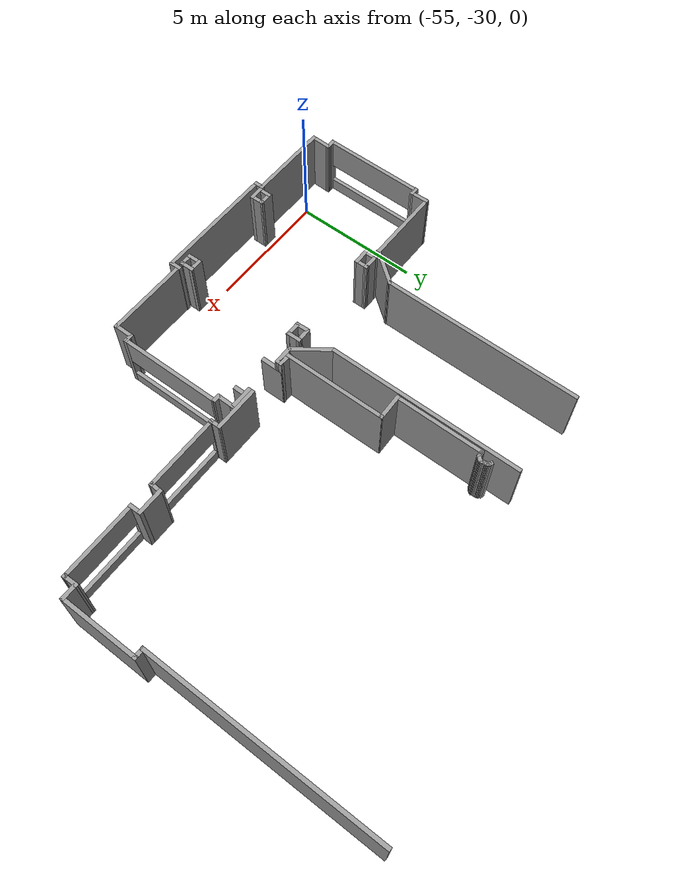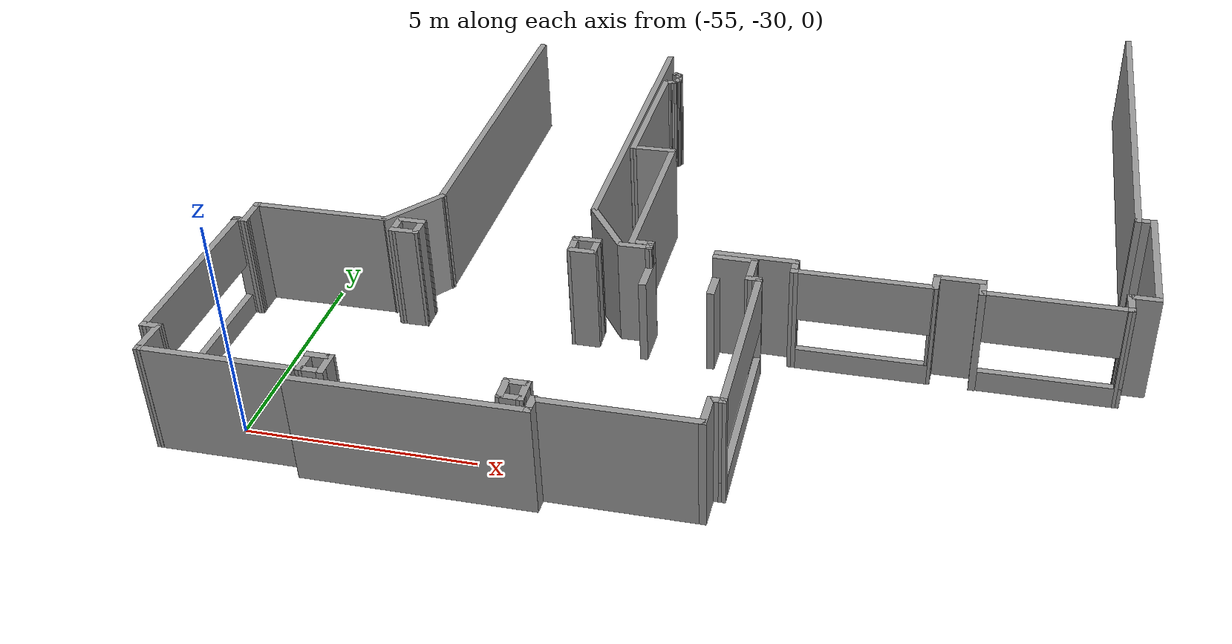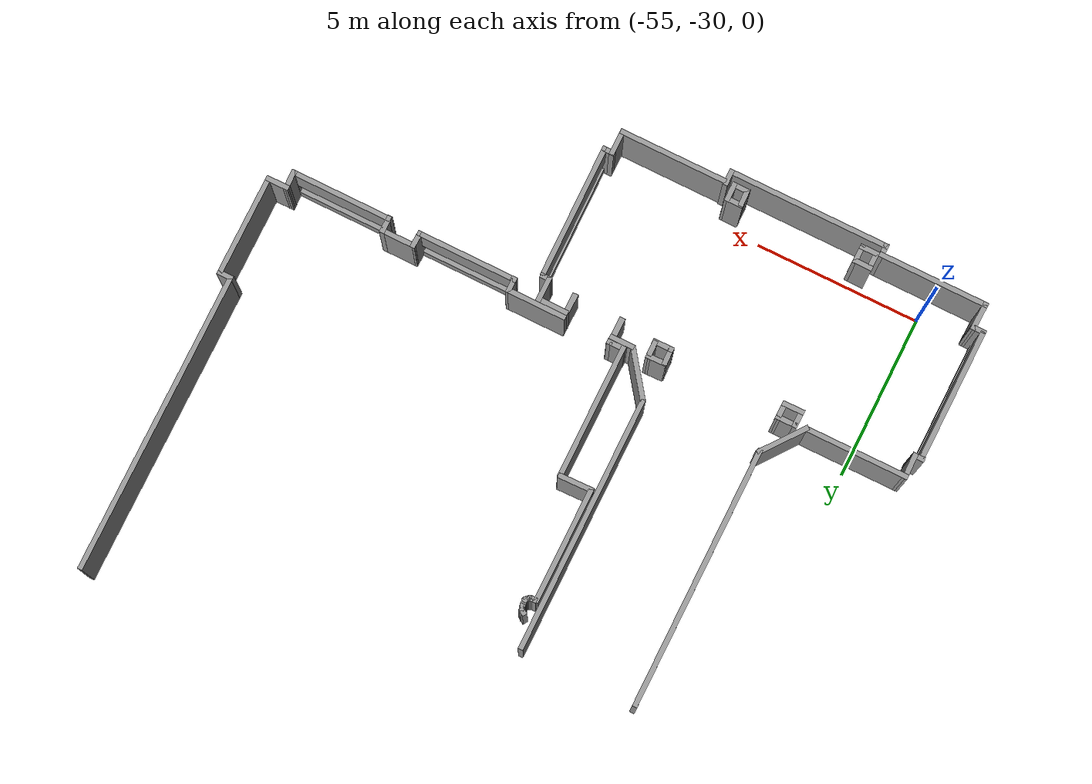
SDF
<sdf version="1.7">
 <model name="TD_n1_largo">
  <pose>-6.3187 -9.13173 0 0 -0 0</pose>
  <link name="Door_2">
   <collision name="Door_2_Collision">
    <geometry><box><size>0.9 0.17 2</size></box></geometry>
    <pose>0 0 1 0 -0 0</pose>
   </collision>
   <visual name="Door_2_Visual">
    <pose>0 0 1 0 -0 0</pose>
    <geometry><box><size>0.9 0.17 2</size></box></geometry>
    <material>
     <script><uri>file://media/materials/scripts/gazebo.material</uri><name>Gazebo/Grey</name></script>
    </material>
   </visual>
   <pose>-41.2094 -16.4238 0 0 -0 1.5717</pose>
  </link>
  <link name="Door_3">
   <collision name="Door_3_Collision">
    <geometry><box><size>0.9 0.17 2</size></box></geometry>
    <pose>0 0 1 0 -0 0</pose>
   </collision>
   <visual name="Door_3_Visual">
    <pose>0 0 1 0 -0 0</pose>
    <geometry><box><size>0.9 0.17 2</size></box></geometry>
    <material>
     <script><uri>file://media/materials/scripts/gazebo.material</uri><name>Gazebo/Grey</name></script>
    </material>
   </visual>
   <pose>-39.7197 -16.4588 0 0 -0 -1.57475</pose>
  </link>
  <link name="Wall_0">
   <pose>-36.5577 -16.4225 0 0 -0 0</pose>
   <visual name="Wall_0_Visual_0">
    <pose>-1.46263 0 1.25 0 -0 0</pose>
    <geometry><box><size>0.175242 0.15 2.5</size></box></geometry>
    <material>
     <script><uri>file://media/materials/scripts/gazebo.material</uri><name>Gazebo/Grey</name></script>
     <ambient>1 1 1 1</ambient>
    </material>
    <meta><layer>0</layer></meta>
   </visual>
   <collision name="Wall_0_Collision_0">
    <geometry><box><size>0.175242 0.15 2.5</size></box></geometry>
    <pose>-1.46263 0 1.25 0 -0 0</pose>
   </collision>
   <visual name="Wall_0_Visual_1">
    <pose>0.087621 0 0.25 0 -0 0</pose>
    <geometry><box><size>2.92525 0.15 0.5</size></box></geometry>
    <material>
     <script><uri>file://media/materials/scripts/gazebo.material</uri><name>Gazebo/Grey</name></script>
     <ambient>1 1 1 1</ambient>
    </material>
    <meta><layer>0</layer></meta>
   </visual>
   <collision name="Wall_0_Collision_1">
    <geometry><box><size>2.92525 0.15 0.5</size></box></geometry>
    <pose>0.087621 0 0.25 0 -0 0</pose>
   </collision>
   <visual name="Wall_0_Visual_2">
    <pose>1.50036 0 1.5 0 -0 0</pose>
    <geometry><box><size>0.099788 0.15 2</size></box></geometry>
    <material>
     <script><uri>file://media/materials/scripts/gazebo.material</uri><name>Gazebo/Grey</name></script>
     <ambient>1 1 1 1</ambient>
    </material>
    <meta><layer>0</layer></meta>
   </visual>
   <collision name="Wall_0_Collision_2">
    <geometry><box><size>0.099788 0.15 2</size></box></geometry>
    <pose>1.50036 0 1.5 0 -0 0</pose>
   </collision>
   <visual name="Wall_0_Visual_3">
    <pose>0.037727 0 1.9 0 -0 0</pose>
    <geometry><box><size>2.82547 0.15 1.2</size></box></geometry>
    <material>
     <script><uri>file://media/materials/scripts/gazebo.material</uri><name>Gazebo/Grey</name></script>
     <ambient>1 1 1 1</ambient>
    </material>
    <meta><layer>0</layer></meta>
   </visual>
   <collision name="Wall_0_Collision_3">
    <geometry><box><size>2.82547 0.15 1.2</size></box></geometry>
    <pose>0.037727 0 1.9 0 -0 0</pose>
   </collision>
  </link>
  <link name="Wall_1">
   <collision name="Wall_1_Collision">
    <geometry><box><size>0.530523 0.15 2.5</size></box></geometry>
    <pose>0 0 1.25 0 -0 0</pose>
   </collision>
   <visual name="Wall_1_Visual">
    <pose>0 0 1.25 0 -0 0</pose>
    <geometry><box><size>0.530523 0.15 2.5</size></box></geometry>
    <material>
     <script><uri>file://media/materials/scripts/gazebo.material</uri><name>Gazebo/Grey</name></script>
     <ambient>1 1 1 1</ambient>
    </material>
    <meta><layer>0</layer></meta>
   </visual>
   <pose>-35.0748 -16.2324 0 0 -0 1.53082</pose>
  </link>
  <link name="Wall_104">
   <collision name="Wall_104_Collision">
    <geometry><box><size>0.304633 0.15 2.5</size></box></geometry>
    <pose>0 0 1.25 0 -0 0</pose>
   </collision>
   <visual name="Wall_104_Visual">
    <pose>0 0 1.25 0 -0 0</pose>
    <geometry><box><size>0.304633 0.15 2.5</size></box></geometry>
    <material>
     <script><uri>file://media/materials/scripts/gazebo.material</uri><name>Gazebo/Grey</name></script>
     <ambient>1 1 1 1</ambient>
    </material>
    <meta><layer>0</layer></meta>
   </visual>
   <pose>-41.2141 -16.0856 0 0 -0 1.58598</pose>
  </link>
  <link name="Wall_106">
   <collision name="Wall_106_Collision">
    <geometry><box><size>1.59403 0.15 2.5</size></box></geometry>
    <pose>0 0 1.25 0 -0 0</pose>
   </collision>
   <visual name="Wall_106_Visual">
    <pose>0 0 1.25 0 -0 0</pose>
    <geometry><box><size>1.59403 0.15 2.5</size></box></geometry>
    <material>
     <script><uri>file://media/materials/scripts/gazebo.material</uri><name>Gazebo/Grey</name></script>
     <ambient>1 1 1 1</ambient>
    </material>
    <meta><layer>0</layer></meta>
   </visual>
   <pose>-42.3094 -15.5501 0 0 -0 -0.936277</pose>
  </link>
  <link name="Wall_108">
   <collision name="Wall_108_Collision">
    <geometry><box><size>0.570768 0.15 2.5</size></box></geometry>
    <pose>0 0 1.25 0 -0 0</pose>
   </collision>
   <visual name="Wall_108_Visual">
    <pose>0 0 1.25 0 -0 0</pose>
    <geometry><box><size>0.570768 0.15 2.5</size></box></geometry>
    <material>
     <script><uri>file://media/materials/scripts/gazebo.material</uri><name>Gazebo/Grey</name></script>
     <ambient>1 1 1 1</ambient>
    </material>
    <meta><layer>0</layer></meta>
   </visual>
   <pose>-46.8605 -16.3919 0 0 -0 -1.58631</pose>
  </link>
  <link name="Wall_109">
   <collision name="Wall_109_Collision">
    <geometry><box><size>0.667814 0.15 2.5</size></box></geometry>
    <pose>0 0 1.25 0 -0 0</pose>
   </collision>
   <visual name="Wall_109_Visual">
    <pose>0 0 1.25 0 -0 0</pose>
    <geometry><box><size>0.667814 0.15 2.5</size></box></geometry>
    <material>
     <script><uri>file://media/materials/scripts/gazebo.material</uri><name>Gazebo/Grey</name></script>
     <ambient>1 1 1 1</ambient>
    </material>
    <meta><layer>0</layer></meta>
   </visual>
   <pose>-46.6049 -16.5987 0 0 -0 0.013878</pose>
  </link>
  <link name="Wall_11">
   <collision name="Wall_11_Collision">
    <geometry><box><size>9.21244 0.15 2.5</size></box></geometry>
    <pose>0 0 1.25 0 -0 0</pose>
   </collision>
   <visual name="Wall_11_Visual">
    <pose>0 0 1.25 0 -0 0</pose>
    <geometry><box><size>9.21244 0.15 2.5</size></box></geometry>
    <material>
     <script><uri>file://media/materials/scripts/gazebo.material</uri><name>Gazebo/Grey</name></script>
     <ambient>1 1 1 1</ambient>
    </material>
    <meta><layer>0</layer></meta>
   </visual>
   <pose>-30.9016 -8.42372 0 0 -0 1.57116</pose>
  </link>
  <link name="Wall_110">
   <collision name="Wall_110_Collision">
    <geometry><box><size>0.562819 0.15 2.5</size></box></geometry>
    <pose>0 0 1.25 0 -0 0</pose>
   </collision>
   <visual name="Wall_110_Visual">
    <pose>0 0 1.25 0 -0 0</pose>
    <geometry><box><size>0.562819 0.15 2.5</size></box></geometry>
    <material>
     <script><uri>file://media/materials/scripts/gazebo.material</uri><name>Gazebo/Grey</name></script>
     <ambient>1 1 1 1</ambient>
    </material>
    <meta><layer>0</layer></meta>
   </visual>
   <pose>-46.3449 -16.3887 0 0 -0 1.56547</pose>
  </link>
  <link name="Wall_111">
   <collision name="Wall_111_Collision">
    <geometry><box><size>0.63 0.15 2.5</size></box></geometry>
    <pose>0 0 1.25 0 -0 0</pose>
   </collision>
   <visual name="Wall_111_Visual">
    <pose>0 0 1.25 0 -0 0</pose>
    <geometry><box><size>0.63 0.15 2.5</size></box></geometry>
    <material>
     <script><uri>file://media/materials/scripts/gazebo.material</uri><name>Gazebo/Grey</name></script>
     <ambient>1 1 1 1</ambient>
    </material>
    <meta><layer>0</layer></meta>
   </visual>
   <pose>-46.5838 -16.1823 0 0 -0 3.14159</pose>
  </link>
  <link name="Wall_113">
   <collision name="Wall_113_Collision">
    <geometry><box><size>0.616404 0.15 2.5</size></box></geometry>
    <pose>0 0 1.25 0 -0 0</pose>
   </collision>
   <visual name="Wall_113_Visual">
    <pose>0 0 1.25 0 -0 0</pose>
    <geometry><box><size>0.616404 0.15 2.5</size></box></geometry>
    <material>
     <script><uri>file://media/materials/scripts/gazebo.material</uri><name>Gazebo/Grey</name></script>
     <ambient>1 1 1 1</ambient>
    </material>
    <meta><layer>0</layer></meta>
   </visual>
   <pose>-42.5904 -16.1383 0 0 -0 0.024189</pose>
  </link>
  <link name="Wall_114">
   <collision name="Wall_114_Collision">
    <geometry><box><size>0.556082 0.15 2.5</size></box></geometry>
    <pose>0 0 1.25 0 -0 0</pose>
   </collision>
   <visual name="Wall_114_Visual">
    <pose>0 0 1.25 0 -0 0</pose>
    <geometry><box><size>0.556082 0.15 2.5</size></box></geometry>
    <material>
     <script><uri>file://media/materials/scripts/gazebo.material</uri><name>Gazebo/Grey</name></script>
     <ambient>1 1 1 1</ambient>
    </material>
    <meta><layer>0</layer></meta>
   </visual>
   <pose>-42.3535 -16.3357 0 0 -0 -1.55228</pose>
  </link>
  <link name="Wall_116">
   <collision name="Wall_116_Collision">
    <geometry><box><size>0.567358 0.15 2.5</size></box></geometry>
    <pose>0 0 1.25 0 -0 0</pose>
   </collision>
   <visual name="Wall_116_Visual">
    <pose>0 0 1.25 0 -0 0</pose>
    <geometry><box><size>0.567358 0.15 2.5</size></box></geometry>
    <material>
     <script><uri>file://media/materials/scripts/gazebo.material</uri><name>Gazebo/Grey</name></script>
     <ambient>1 1 1 1</ambient>
    </material>
    <meta><layer>0</layer></meta>
   </visual>
   <pose>-42.8422 -16.3714 0 0 -0 -1.53478</pose>
  </link>
  <link name="Wall_117">
   <collision name="Wall_117_Collision">
    <geometry><box><size>0.642994 0.15 2.5</size></box></geometry>
    <pose>0 0 1.25 0 -0 0</pose>
   </collision>
   <visual name="Wall_117_Visual">
    <pose>0 0 1.25 0 -0 0</pose>
    <geometry><box><size>0.642994 0.15 2.5</size></box></geometry>
    <material>
     <script><uri>file://media/materials/scripts/gazebo.material</uri><name>Gazebo/Grey</name></script>
     <ambient>1 1 1 1</ambient>
    </material>
    <meta><layer>0</layer></meta>
   </visual>
   <pose>-42.5885 -16.58 0 0 -0 0</pose>
  </link>
  <link name="Wall_119">
   <collision name="Wall_119_Collision">
    <geometry><box><size>0.592492 0.15 2.5</size></box></geometry>
    <pose>0 0 1.25 0 -0 0</pose>
   </collision>
   <visual name="Wall_119_Visual">
    <pose>0 0 1.25 0 -0 0</pose>
    <geometry><box><size>0.592492 0.15 2.5</size></box></geometry>
    <material>
     <script><uri>file://media/materials/scripts/gazebo.material</uri><name>Gazebo/Grey</name></script>
     <ambient>1 1 1 1</ambient>
    </material>
    <meta><layer>0</layer></meta>
   </visual>
   <pose>-46.5893 -21.1301 0 0 -0 -0.004485</pose>
  </link>
  <link name="Wall_120">
   <collision name="Wall_120_Collision">
    <geometry><box><size>0.591316 0.15 2.5</size></box></geometry>
    <pose>0 0 1.25 0 -0 0</pose>
   </collision>
   <visual name="Wall_120_Visual">
    <pose>0 0 1.25 0 -0 0</pose>
    <geometry><box><size>0.591316 0.15 2.5</size></box></geometry>
    <material>
     <script><uri>file://media/materials/scripts/gazebo.material</uri><name>Gazebo/Grey</name></script>
     <ambient>1 1 1 1</ambient>
    </material>
    <meta><layer>0</layer></meta>
   </visual>
   <pose>-46.3681 -21.3516 0 0 -0 -1.5708</pose>
  </link>
  <link name="Wall_121">
   <collision name="Wall_121_Collision">
    <geometry><box><size>0.591316 0.15 2.5</size></box></geometry>
    <pose>0 0 1.25 0 -0 0</pose>
   </collision>
   <visual name="Wall_121_Visual">
    <pose>0 0 1.25 0 -0 0</pose>
    <geometry><box><size>0.591316 0.15 2.5</size></box></geometry>
    <material>
     <script><uri>file://media/materials/scripts/gazebo.material</uri><name>Gazebo/Grey</name></script>
     <ambient>1 1 1 1</ambient>
    </material>
    <meta><layer>0</layer></meta>
   </visual>
   <pose>-46.5886 -21.5722 0 0 -0 3.14159</pose>
  </link>
  <link name="Wall_122">
   <collision name="Wall_122_Collision">
    <geometry><box><size>0.583097 0.15 2.5</size></box></geometry>
    <pose>0 0 1.25 0 -0 0</pose>
   </collision>
   <visual name="Wall_122_Visual">
    <pose>0 0 1.25 0 -0 0</pose>
    <geometry><box><size>0.583097 0.15 2.5</size></box></geometry>
    <material>
     <script><uri>file://media/materials/scripts/gazebo.material</uri><name>Gazebo/Grey</name></script>
     <ambient>1 1 1 1</ambient>
    </material>
    <meta><layer>0</layer></meta>
   </visual>
   <pose>-46.8049 -21.3556 0 0 -0 1.55115</pose>
  </link>
  <link name="Wall_124">
   <collision name="Wall_124_Collision">
    <geometry><box><size>0.567895 0.15 2.5</size></box></geometry>
    <pose>0 0 1.25 0 -0 0</pose>
   </collision>
   <visual name="Wall_124_Visual">
    <pose>0 0 1.25 0 -0 0</pose>
    <geometry><box><size>0.567895 0.15 2.5</size></box></geometry>
    <material>
     <script><uri>file://media/materials/scripts/gazebo.material</uri><name>Gazebo/Grey</name></script>
     <ambient>1 1 1 1</ambient>
    </material>
    <meta><layer>0</layer></meta>
   </visual>
   <pose>-42.5895 -21.1441 0 0 -0 0</pose>
  </link>
  <link name="Wall_125">
   <collision name="Wall_125_Collision">
    <geometry><box><size>0.592599 0.15 2.5</size></box></geometry>
    <pose>0 0 1.25 0 -0 0</pose>
   </collision>
   <visual name="Wall_125_Visual">
    <pose>0 0 1.25 0 -0 0</pose>
    <geometry><box><size>0.592599 0.15 2.5</size></box></geometry>
    <material>
     <script><uri>file://media/materials/scripts/gazebo.material</uri><name>Gazebo/Grey</name></script>
     <ambient>1 1 1 1</ambient>
    </material>
    <meta><layer>0</layer></meta>
   </visual>
   <pose>-42.3807 -21.3653 0 0 -0 -1.54833</pose>
  </link>
  <link name="Wall_126">
   <collision name="Wall_126_Collision">
    <geometry><box><size>0.557715 0.15 2.5</size></box></geometry>
    <pose>0 0 1.25 0 -0 0</pose>
   </collision>
   <visual name="Wall_126_Visual">
    <pose>0 0 1.25 0 -0 0</pose>
    <geometry><box><size>0.557715 0.15 2.5</size></box></geometry>
    <material>
     <script><uri>file://media/materials/scripts/gazebo.material</uri><name>Gazebo/Grey</name></script>
     <ambient>1 1 1 1</ambient>
    </material>
    <meta><layer>0</layer></meta>
   </visual>
   <pose>-42.5796 -21.5841 0 0 -0 3.1294</pose>
  </link>
  <link name="Wall_127">
   <collision name="Wall_127_Collision">
    <geometry><box><size>0.548021 0.15 2.5</size></box></geometry>
    <pose>0 0 1.25 0 -0 0</pose>
   </collision>
   <visual name="Wall_127_Visual">
    <pose>0 0 1.25 0 -0 0</pose>
    <geometry><box><size>0.548021 0.15 2.5</size></box></geometry>
    <material>
     <script><uri>file://media/materials/scripts/gazebo.material</uri><name>Gazebo/Grey</name></script>
     <ambient>1 1 1 1</ambient>
    </material>
    <meta><layer>0</layer></meta>
   </visual>
   <pose>-42.7884 -21.3827 0 0 -0 1.59579</pose>
  </link>
  <link name="Wall_129">
   <collision name="Wall_129_Collision">
    <geometry><box><size>1.07551 0.15 2.5</size></box></geometry>
    <pose>0 0 1.25 0 -0 0</pose>
   </collision>
   <visual name="Wall_129_Visual">
    <pose>0 0 1.25 0 -0 0</pose>
    <geometry><box><size>1.07551 0.15 2.5</size></box></geometry>
    <material>
     <script><uri>file://media/materials/scripts/gazebo.material</uri><name>Gazebo/Grey</name></script>
     <ambient>1 1 1 1</ambient>
    </material>
    <meta><layer>0</layer></meta>
   </visual>
   <pose>-42.1162 -12.0361 0 0 -0 -3.1166</pose>
  </link>
  <link name="Wall_130">
   <collision name="Wall_130_Collision">
    <geometry><box><size>3.5502 0.15 2.5</size></box></geometry>
    <pose>0 0 1.25 0 -0 0</pose>
   </collision>
   <visual name="Wall_130_Visual">
    <pose>0 0 1.25 0 -0 0</pose>
    <geometry><box><size>3.5502 0.15 2.5</size></box></geometry>
    <material>
     <script><uri>file://media/materials/scripts/gazebo.material</uri><name>Gazebo/Grey</name></script>
     <ambient>1 1 1 1</ambient>
    </material>
    <meta><layer>0</layer></meta>
   </visual>
   <pose>-42.5788 -10.3476 0 0 -0 1.5708</pose>
  </link>
  <link name="Wall_138">
   <collision name="Wall_138_Collision">
    <geometry><box><size>0.227978 0.15 2.5</size></box></geometry>
    <pose>0 0 1.25 0 -0 0</pose>
   </collision>
   <visual name="Wall_138_Visual">
    <pose>0 0 1.25 0 -0 0</pose>
    <geometry><box><size>0.227978 0.15 2.5</size></box></geometry>
    <material>
     <script><uri>file://media/materials/scripts/gazebo.material</uri><name>Gazebo/Grey</name></script>
     <ambient>1 1 1 1</ambient>
    </material>
    <meta><layer>0</layer></meta>
   </visual>
   <pose>-42.3777 -8.18661 0 0 -0 -0.576375</pose>
  </link>
  <link name="Wall_139">
   <collision name="Wall_139_Collision">
    <geometry><box><size>0.212881 0.15 2.5</size></box></geometry>
    <pose>0 0 1.25 0 -0 0</pose>
   </collision>
   <visual name="Wall_139_Visual">
    <pose>0 0 1.25 0 -0 0</pose>
    <geometry><box><size>0.212881 0.15 2.5</size></box></geometry>
    <material>
     <script><uri>file://media/materials/scripts/gazebo.material</uri><name>Gazebo/Grey</name></script>
     <ambient>1 1 1 1</ambient>
    </material>
    <meta><layer>0</layer></meta>
   </visual>
   <pose>-42.3303 -8.23564 0 0 -0 -1.0839</pose>
  </link>
  <link name="Wall_140">
   <collision name="Wall_140_Collision">
    <geometry><box><size>0.21107 0.15 2.5</size></box></geometry>
    <pose>0 0 1.25 0 -0 0</pose>
   </collision>
   <visual name="Wall_140_Visual">
    <pose>0 0 1.25 0 -0 0</pose>
    <geometry><box><size>0.21107 0.15 2.5</size></box></geometry>
    <material>
     <script><uri>file://media/materials/scripts/gazebo.material</uri><name>Gazebo/Grey</name></script>
     <ambient>1 1 1 1</ambient>
    </material>
    <meta><layer>0</layer></meta>
   </visual>
   <pose>-42.3074 -8.29285 0 0 -0 -1.29985</pose>
  </link>
  <link name="Wall_141">
   <collision name="Wall_141_Collision">
    <geometry><box><size>0.222215 0.15 2.5</size></box></geometry>
    <pose>0 0 1.25 0 -0 0</pose>
   </collision>
   <visual name="Wall_141_Visual">
    <pose>0 0 1.25 0 -0 0</pose>
    <geometry><box><size>0.222215 0.15 2.5</size></box></geometry>
    <material>
     <script><uri>file://media/materials/scripts/gazebo.material</uri><name>Gazebo/Grey</name></script>
     <ambient>1 1 1 1</ambient>
    </material>
    <meta><layer>0</layer></meta>
   </visual>
   <pose>-42.2959 -8.35823 0 0 -0 -1.48014</pose>
  </link>
  <link name="Wall_142">
   <collision name="Wall_142_Collision">
    <geometry><box><size>0.212111 0.15 2.5</size></box></geometry>
    <pose>0 0 1.25 0 -0 0</pose>
   </collision>
   <visual name="Wall_142_Visual">
    <pose>0 0 1.25 0 -0 0</pose>
    <geometry><box><size>0.212111 0.15 2.5</size></box></geometry>
    <material>
     <script><uri>file://media/materials/scripts/gazebo.material</uri><name>Gazebo/Grey</name></script>
     <ambient>1 1 1 1</ambient>
    </material>
    <meta><layer>0</layer></meta>
   </visual>
   <pose>-42.291 -8.42525 0 0 -0 -1.51821</pose>
  </link>
  <link name="Wall_143">
   <collision name="Wall_143_Collision">
    <geometry><box><size>0.192497 0.15 2.5</size></box></geometry>
    <pose>0 0 1.25 0 -0 0</pose>
   </collision>
   <visual name="Wall_143_Visual">
    <pose>0 0 1.25 0 -0 0</pose>
    <geometry><box><size>0.192497 0.15 2.5</size></box></geometry>
    <material>
     <script><uri>file://media/materials/scripts/gazebo.material</uri><name>Gazebo/Grey</name></script>
     <ambient>1 1 1 1</ambient>
    </material>
    <meta><layer>0</layer></meta>
   </visual>
   <pose>-42.2894 -8.47755 0 0 -0 -1.5708</pose>
  </link>
  <link name="Wall_144">
   <collision name="Wall_144_Collision">
    <geometry><box><size>0.188123 0.15 2.5</size></box></geometry>
    <pose>0 0 1.25 0 -0 0</pose>
   </collision>
   <visual name="Wall_144_Visual">
    <pose>0 0 1.25 0 -0 0</pose>
    <geometry><box><size>0.188123 0.15 2.5</size></box></geometry>
    <material>
     <script><uri>file://media/materials/scripts/gazebo.material</uri><name>Gazebo/Grey</name></script>
     <ambient>1 1 1 1</ambient>
    </material>
    <meta><layer>0</layer></meta>
   </visual>
   <pose>-42.2992 -8.51514 0 0 -0 -2.11122</pose>
  </link>
  <link name="Wall_145">
   <collision name="Wall_145_Collision">
    <geometry><box><size>0.19398 0.15 2.5</size></box></geometry>
    <pose>0 0 1.25 0 -0 0</pose>
   </collision>
   <visual name="Wall_145_Visual">
    <pose>0 0 1.25 0 -0 0</pose>
    <geometry><box><size>0.19398 0.15 2.5</size></box></geometry>
    <material>
     <script><uri>file://media/materials/scripts/gazebo.material</uri><name>Gazebo/Grey</name></script>
     <ambient>1 1 1 1</ambient>
    </material>
    <meta><layer>0</layer></meta>
   </visual>
   <pose>-42.3237 -8.54783 0 0 -0 -2.30361</pose>
  </link>
  <link name="Wall_146">
   <collision name="Wall_146_Collision">
    <geometry><box><size>0.21996 0.15 2.5</size></box></geometry>
    <pose>0 0 1.25 0 -0 0</pose>
   </collision>
   <visual name="Wall_146_Visual">
    <pose>0 0 1.25 0 -0 0</pose>
    <geometry><box><size>0.21996 0.15 2.5</size></box></geometry>
    <material>
     <script><uri>file://media/materials/scripts/gazebo.material</uri><name>Gazebo/Grey</name></script>
     <ambient>1 1 1 1</ambient>
    </material>
    <meta><layer>0</layer></meta>
   </visual>
   <pose>-42.3662 -8.58543 0 0 -0 -2.48875</pose>
  </link>
  <link name="Wall_147">
   <collision name="Wall_147_Collision">
    <geometry><box><size>0.219884 0.15 2.5</size></box></geometry>
    <pose>0 0 1.25 0 -0 0</pose>
   </collision>
   <visual name="Wall_147_Visual">
    <pose>0 0 1.25 0 -0 0</pose>
    <geometry><box><size>0.219884 0.15 2.5</size></box></geometry>
    <material>
     <script><uri>file://media/materials/scripts/gazebo.material</uri><name>Gazebo/Grey</name></script>
     <ambient>1 1 1 1</ambient>
    </material>
    <meta><layer>0</layer></meta>
   </visual>
   <pose>-42.4283 -8.61322 0 0 -0 -2.95337</pose>
  </link>
  <link name="Wall_148">
   <collision name="Wall_148_Collision">
    <geometry><box><size>0.208842 0.15 2.5</size></box></geometry>
    <pose>0 0 1.25 0 -0 0</pose>
   </collision>
   <visual name="Wall_148_Visual">
    <pose>0 0 1.25 0 -0 0</pose>
    <geometry><box><size>0.208842 0.15 2.5</size></box></geometry>
    <material>
     <script><uri>file://media/materials/scripts/gazebo.material</uri><name>Gazebo/Grey</name></script>
     <ambient>1 1 1 1</ambient>
    </material>
    <meta><layer>0</layer></meta>
   </visual>
   <pose>-42.4921 -8.61975 0 0 -0 3.14159</pose>
  </link>
  <link name="Wall_2">
   <collision name="Wall_2_Collision">
    <geometry><box><size>1.09294 0.15 2.5</size></box></geometry>
    <pose>0 0 1.25 0 -0 0</pose>
   </collision>
   <visual name="Wall_2_Visual">
    <pose>0 0 1.25 0 -0 0</pose>
    <geometry><box><size>1.09294 0.15 2.5</size></box></geometry>
    <material>
     <script><uri>file://media/materials/scripts/gazebo.material</uri><name>Gazebo/Grey</name></script>
     <ambient>1 1 1 1</ambient>
    </material>
    <meta><layer>0</layer></meta>
   </visual>
   <pose>-34.5957 -16.0423 0 0 -0 0</pose>
  </link>
  <link name="Wall_29">
   <collision name="Wall_29_Collision">
    <geometry><box><size>0.494681 0.15 2.5</size></box></geometry>
    <pose>0 0 1.25 0 -0 0</pose>
   </collision>
   <visual name="Wall_29_Visual">
    <pose>0 0 1.25 0 -0 0</pose>
    <geometry><box><size>0.494681 0.15 2.5</size></box></geometry>
    <material>
     <script><uri>file://media/materials/scripts/gazebo.material</uri><name>Gazebo/Grey</name></script>
     <ambient>1 1 1 1</ambient>
    </material>
    <meta><layer>0</layer></meta>
   </visual>
   <pose>-38.0339 -16.2502 0 0 -0 1.57674</pose>
  </link>
  <link name="Wall_3">
   <collision name="Wall_3_Collision">
    <geometry><box><size>0.545427 0.15 2.5</size></box></geometry>
    <pose>0 0 1.25 0 -0 0</pose>
   </collision>
   <visual name="Wall_3_Visual">
    <pose>0 0 1.25 0 -0 0</pose>
    <geometry><box><size>0.545427 0.15 2.5</size></box></geometry>
    <material>
     <script><uri>file://media/materials/scripts/gazebo.material</uri><name>Gazebo/Grey</name></script>
     <ambient>1 1 1 1</ambient>
    </material>
    <meta><layer>0</layer></meta>
   </visual>
   <pose>-34.109 -16.24 0 0 -0 -1.5708</pose>
  </link>
  <link name="Wall_30">
   <collision name="Wall_30_Collision">
    <geometry><box><size>1.84548 0.15 2.5</size></box></geometry>
    <pose>0 0 1.25 0 -0 0</pose>
   </collision>
   <visual name="Wall_30_Visual">
    <pose>0 0 1.25 0 -0 0</pose>
    <geometry><box><size>1.84548 0.15 2.5</size></box></geometry>
    <material>
     <script><uri>file://media/materials/scripts/gazebo.material</uri><name>Gazebo/Grey</name></script>
     <ambient>1 1 1 1</ambient>
    </material>
    <meta><layer>0</layer></meta>
   </visual>
   <pose>-38.8827 -16.076 0 0 -0 3.13937</pose>
  </link>
  <link name="Wall_32">
   <collision name="Wall_32_Collision">
    <geometry><box><size>0.5805 0.15 2.5</size></box></geometry>
    <pose>0 0 1.25 0 -0 0</pose>
   </collision>
   <visual name="Wall_32_Visual">
    <pose>0 0 1.25 0 -0 0</pose>
    <geometry><box><size>0.5805 0.15 2.5</size></box></geometry>
    <material>
     <script><uri>file://media/materials/scripts/gazebo.material</uri><name>Gazebo/Grey</name></script>
     <ambient>1 1 1 1</ambient>
    </material>
    <meta><layer>0</layer></meta>
   </visual>
   <pose>-41.4227 -16.0089 0 0 -0 3.14159</pose>
  </link>
  <link name="Wall_33">
   <collision name="Wall_33_Collision">
    <geometry><box><size>4.106 0.15 2.5</size></box></geometry>
    <pose>0 0 1.25 0 -0 0</pose>
   </collision>
   <visual name="Wall_33_Visual">
    <pose>0 0 1.25 0 -0 0</pose>
    <geometry><box><size>4.106 0.15 2.5</size></box></geometry>
    <material>
     <script><uri>file://media/materials/scripts/gazebo.material</uri><name>Gazebo/Grey</name></script>
     <ambient>1 1 1 1</ambient>
    </material>
    <meta><layer>0</layer></meta>
   </visual>
   <pose>-41.6297 -14.0309 0 0 -0 1.57244</pose>
  </link>
  <link name="Wall_42">
   <collision name="Wall_42_Collision">
    <geometry><box><size>0.981744 0.15 2.5</size></box></geometry>
    <pose>0 0 1.25 0 -0 0</pose>
   </collision>
   <visual name="Wall_42_Visual">
    <pose>0 0 1.25 0 -0 0</pose>
    <geometry><box><size>0.981744 0.15 2.5</size></box></geometry>
    <material>
     <script><uri>file://media/materials/scripts/gazebo.material</uri><name>Gazebo/Grey</name></script>
     <ambient>1 1 1 1</ambient>
    </material>
    <meta><layer>0</layer></meta>
   </visual>
   <pose>-39.3146 -16.2235 0 0 -0 3.13491</pose>
  </link>
  <link name="Wall_44">
   <collision name="Wall_44_Collision">
    <geometry><box><size>0.794057 0.15 2.5</size></box></geometry>
    <pose>0 0 1.25 0 -0 0</pose>
   </collision>
   <visual name="Wall_44_Visual">
    <pose>0 0 1.25 0 -0 0</pose>
    <geometry><box><size>0.794057 0.15 2.5</size></box></geometry>
    <material>
     <script><uri>file://media/materials/scripts/gazebo.material</uri><name>Gazebo/Grey</name></script>
     <ambient>1 1 1 1</ambient>
    </material>
    <meta><layer>0</layer></meta>
   </visual>
   <pose>-38.9043 -16.5482 0 0 -0 -1.57664</pose>
  </link>
  <link name="Wall_45">
   <collision name="Wall_45_Collision">
    <geometry><box><size>0.343899 0.15 2.5</size></box></geometry>
    <pose>0 0 1.25 0 -0 0</pose>
   </collision>
   <visual name="Wall_45_Visual">
    <pose>0 0 1.25 0 -0 0</pose>
    <geometry><box><size>0.343899 0.15 2.5</size></box></geometry>
    <material>
     <script><uri>file://media/materials/scripts/gazebo.material</uri><name>Gazebo/Grey</name></script>
     <ambient>1 1 1 1</ambient>
    </material>
    <meta><layer>0</layer></meta>
   </visual>
   <pose>-38.8093 -16.8701 0 0 -0 0</pose>
  </link>
  <link name="Wall_47">
   <pose>-38.6735 -18.9229 0 0 -0 -1.56195</pose>
   <visual name="Wall_47_Visual_0">
    <pose>-2.01381 0 1.25 0 -0 0</pose>
    <geometry><box><size>0.075296 0.15 2.5</size></box></geometry>
    <material>
     <script><uri>file://media/materials/scripts/gazebo.material</uri><name>Gazebo/Grey</name></script>
     <ambient>1 1 1 1</ambient>
    </material>
    <meta><layer>0</layer></meta>
   </visual>
   <collision name="Wall_47_Collision_0">
    <geometry><box><size>0.075296 0.15 2.5</size></box></geometry>
    <pose>-2.01381 0 1.25 0 -0 0</pose>
   </collision>
   <visual name="Wall_47_Visual_1">
    <pose>0.037648 0 0.25 0 -0 0</pose>
    <geometry><box><size>4.02761 0.15 0.5</size></box></geometry>
    <material>
     <script><uri>file://media/materials/scripts/gazebo.material</uri><name>Gazebo/Grey</name></script>
     <ambient>1 1 1 1</ambient>
    </material>
    <meta><layer>0</layer></meta>
   </visual>
   <collision name="Wall_47_Collision_1">
    <geometry><box><size>4.02761 0.15 0.5</size></box></geometry>
    <pose>0.037648 0 0.25 0 -0 0</pose>
   </collision>
   <visual name="Wall_47_Visual_2">
    <pose>1.986 0 1.5 0 -0 0</pose>
    <geometry><box><size>0.130913 0.15 2</size></box></geometry>
    <material>
     <script><uri>file://media/materials/scripts/gazebo.material</uri><name>Gazebo/Grey</name></script>
     <ambient>1 1 1 1</ambient>
    </material>
    <meta><layer>0</layer></meta>
   </visual>
   <collision name="Wall_47_Collision_2">
    <geometry><box><size>0.130913 0.15 2</size></box></geometry>
    <pose>1.986 0 1.5 0 -0 0</pose>
   </collision>
   <visual name="Wall_47_Visual_3">
    <pose>-0.027808 0 1.9 0 -0 0</pose>
    <geometry><box><size>3.8967 0.15 1.2</size></box></geometry>
    <material>
     <script><uri>file://media/materials/scripts/gazebo.material</uri><name>Gazebo/Grey</name></script>
     <ambient>1 1 1 1</ambient>
    </material>
    <meta><layer>0</layer></meta>
   </visual>
   <collision name="Wall_47_Collision_3">
    <geometry><box><size>3.8967 0.15 1.2</size></box></geometry>
    <pose>-0.027808 0 1.9 0 -0 0</pose>
   </collision>
  </link>
  <link name="Wall_49">
   <collision name="Wall_49_Collision">
    <geometry><box><size>0.390465 0.15 2.5</size></box></geometry>
    <pose>0 0 1.25 0 -0 0</pose>
   </collision>
   <visual name="Wall_49_Visual">
    <pose>0 0 1.25 0 -0 0</pose>
    <geometry><box><size>0.390465 0.15 2.5</size></box></geometry>
    <material>
     <script><uri>file://media/materials/scripts/gazebo.material</uri><name>Gazebo/Grey</name></script>
     <ambient>1 1 1 1</ambient>
    </material>
    <meta><layer>0</layer></meta>
   </visual>
   <pose>-38.7758 -20.8997 0 0 -0 -3.13847</pose>
  </link>
  <link name="Wall_5">
   <pose>-32.611 -16.4225 0 0 -0 0</pose>
   <visual name="Wall_5_Visual_0">
    <pose>-1.4976 0 1.25 0 -0 0</pose>
    <geometry><box><size>0.150966 0.15 2.5</size></box></geometry>
    <material>
     <script><uri>file://media/materials/scripts/gazebo.material</uri><name>Gazebo/Grey</name></script>
     <ambient>1 1 1 1</ambient>
    </material>
    <meta><layer>0</layer></meta>
   </visual>
   <collision name="Wall_5_Collision_0">
    <geometry><box><size>0.150966 0.15 2.5</size></box></geometry>
    <pose>-1.4976 0 1.25 0 -0 0</pose>
   </collision>
   <visual name="Wall_5_Visual_1">
    <pose>0.075483 0 0.25 0 -0 0</pose>
    <geometry><box><size>2.9952 0.15 0.5</size></box></geometry>
    <material>
     <script><uri>file://media/materials/scripts/gazebo.material</uri><name>Gazebo/Grey</name></script>
     <ambient>1 1 1 1</ambient>
    </material>
    <meta><layer>0</layer></meta>
   </visual>
   <collision name="Wall_5_Collision_1">
    <geometry><box><size>2.9952 0.15 0.5</size></box></geometry>
    <pose>0.075483 0 0.25 0 -0 0</pose>
   </collision>
   <visual name="Wall_5_Visual_2">
    <pose>1.49135 0 1.5 0 -0 0</pose>
    <geometry><box><size>0.163471 0.15 2</size></box></geometry>
    <material>
     <script><uri>file://media/materials/scripts/gazebo.material</uri><name>Gazebo/Grey</name></script>
     <ambient>1 1 1 1</ambient>
    </material>
    <meta><layer>0</layer></meta>
   </visual>
   <collision name="Wall_5_Collision_2">
    <geometry><box><size>0.163471 0.15 2</size></box></geometry>
    <pose>1.49135 0 1.5 0 -0 0</pose>
   </collision>
   <visual name="Wall_5_Visual_3">
    <pose>-0.006252 0 1.9 0 -0 0</pose>
    <geometry><box><size>2.83173 0.15 1.2</size></box></geometry>
    <material>
     <script><uri>file://media/materials/scripts/gazebo.material</uri><name>Gazebo/Grey</name></script>
     <ambient>1 1 1 1</ambient>
    </material>
    <meta><layer>0</layer></meta>
   </visual>
   <collision name="Wall_5_Collision_3">
    <geometry><box><size>2.83173 0.15 1.2</size></box></geometry>
    <pose>-0.006252 0 1.9 0 -0 0</pose>
   </collision>
  </link>
  <link name="Wall_50">
   <collision name="Wall_50_Collision">
    <geometry><box><size>0.820671 0.15 2.5</size></box></geometry>
    <pose>0 0 1.25 0 -0 0</pose>
   </collision>
   <visual name="Wall_50_Visual">
    <pose>0 0 1.25 0 -0 0</pose>
    <geometry><box><size>0.820671 0.15 2.5</size></box></geometry>
    <material>
     <script><uri>file://media/materials/scripts/gazebo.material</uri><name>Gazebo/Grey</name></script>
     <ambient>1 1 1 1</ambient>
    </material>
    <meta><layer>0</layer></meta>
   </visual>
   <pose>-38.8956 -21.235 0 0 -0 -1.5708</pose>
  </link>
  <link name="Wall_51">
   <collision name="Wall_51_Collision">
    <geometry><box><size>3.3 0.15 2.5</size></box></geometry>
    <pose>0 0 1.25 0 -0 0</pose>
   </collision>
   <visual name="Wall_51_Visual">
    <pose>0 0 1.25 0 -0 0</pose>
    <geometry><box><size>3.3 0.15 2.5</size></box></geometry>
    <material>
     <script><uri>file://media/materials/scripts/gazebo.material</uri><name>Gazebo/Grey</name></script>
     <ambient>1 1 1 1</ambient>
    </material>
    <meta><layer>0</layer></meta>
   </visual>
   <pose>-40.4806 -21.57 0 0 -0 3.14159</pose>
  </link>
  <link name="Wall_53">
   <collision name="Wall_53_Collision">
    <geometry><box><size>0.499801 0.15 2.5</size></box></geometry>
    <pose>0 0 1.25 0 -0 0</pose>
   </collision>
   <visual name="Wall_53_Visual">
    <pose>0 0 1.25 0 -0 0</pose>
    <geometry><box><size>0.499801 0.15 2.5</size></box></geometry>
    <material>
     <script><uri>file://media/materials/scripts/gazebo.material</uri><name>Gazebo/Grey</name></script>
     <ambient>1 1 1 1</ambient>
    </material>
    <meta><layer>0</layer></meta>
   </visual>
   <pose>-42.1461 -21.7145 0 0 -0 -1.5708</pose>
  </link>
  <link name="Wall_54">
   <collision name="Wall_54_Collision">
    <geometry><box><size>4.95977 0.15 2.5</size></box></geometry>
    <pose>0 0 1.25 0 -0 0</pose>
   </collision>
   <visual name="Wall_54_Visual">
    <pose>0 0 1.25 0 -0 0</pose>
    <geometry><box><size>4.95977 0.15 2.5</size></box></geometry>
    <material>
     <script><uri>file://media/materials/scripts/gazebo.material</uri><name>Gazebo/Grey</name></script>
     <ambient>1 1 1 1</ambient>
    </material>
    <meta><layer>0</layer></meta>
   </visual>
   <pose>-44.551 -21.8894 0 0 -0 3.14159</pose>
  </link>
  <link name="Wall_55">
   <collision name="Wall_55_Collision">
    <geometry><box><size>0.429841 0.15 2.5</size></box></geometry>
    <pose>0 0 1.25 0 -0 0</pose>
   </collision>
   <visual name="Wall_55_Visual">
    <pose>0 0 1.25 0 -0 0</pose>
    <geometry><box><size>0.429841 0.15 2.5</size></box></geometry>
    <material>
     <script><uri>file://media/materials/scripts/gazebo.material</uri><name>Gazebo/Grey</name></script>
     <ambient>1 1 1 1</ambient>
    </material>
    <meta><layer>0</layer></meta>
   </visual>
   <pose>-46.9559 -21.7494 0 0 -0 1.5708</pose>
  </link>
  <link name="Wall_56">
   <collision name="Wall_56_Collision">
    <geometry><box><size>3.3547 0.15 2.5</size></box></geometry>
    <pose>0 0 1.25 0 -0 0</pose>
   </collision>
   <visual name="Wall_56_Visual">
    <pose>0 0 1.25 0 -0 0</pose>
    <geometry><box><size>3.3547 0.15 2.5</size></box></geometry>
    <material>
     <script><uri>file://media/materials/scripts/gazebo.material</uri><name>Gazebo/Grey</name></script>
     <ambient>1 1 1 1</ambient>
    </material>
    <meta><layer>0</layer></meta>
   </visual>
   <pose>-48.5582 -21.6074 0 0 -0 3.14025</pose>
  </link>
  <link name="Wall_57">
   <collision name="Wall_57_Collision">
    <geometry><box><size>0.8806 0.15 2.5</size></box></geometry>
    <pose>0 0 1.25 0 -0 0</pose>
   </collision>
   <visual name="Wall_57_Visual">
    <pose>0 0 1.25 0 -0 0</pose>
    <geometry><box><size>0.8806 0.15 2.5</size></box></geometry>
    <material>
     <script><uri>file://media/materials/scripts/gazebo.material</uri><name>Gazebo/Grey</name></script>
     <ambient>1 1 1 1</ambient>
    </material>
    <meta><layer>0</layer></meta>
   </visual>
   <pose>-50.1498 -21.2401 0 0 -0 1.54138</pose>
  </link>
  <link name="Wall_58">
   <collision name="Wall_58_Collision">
    <geometry><box><size>0.447331 0.15 2.5</size></box></geometry>
    <pose>0 0 1.25 0 -0 0</pose>
   </collision>
   <visual name="Wall_58_Visual">
    <pose>0 0 1.25 0 -0 0</pose>
    <geometry><box><size>0.447331 0.15 2.5</size></box></geometry>
    <material>
     <script><uri>file://media/materials/scripts/gazebo.material</uri><name>Gazebo/Grey</name></script>
     <ambient>1 1 1 1</ambient>
    </material>
    <meta><layer>0</layer></meta>
   </visual>
   <pose>-50.2877 -20.8749 0 0 -0 3.14159</pose>
  </link>
  <link name="Wall_6">
   <collision name="Wall_6_Collision">
    <geometry><box><size>0.621716 0.15 2.5</size></box></geometry>
    <pose>0 0 1.25 0 -0 0</pose>
   </collision>
   <visual name="Wall_6_Visual">
    <pose>0 0 1.25 0 -0 0</pose>
    <geometry><box><size>0.621716 0.15 2.5</size></box></geometry>
    <material>
     <script><uri>file://media/materials/scripts/gazebo.material</uri><name>Gazebo/Grey</name></script>
     <ambient>1 1 1 1</ambient>
    </material>
    <meta><layer>0</layer></meta>
   </visual>
   <pose>-31.1205 -16.1868 0 0 -0 1.60304</pose>
  </link>
  <link name="Wall_60">
   <pose>-50.4222 -18.8997 0 0 -0 1.56363</pose>
   <visual name="Wall_60_Visual_0">
    <pose>-1.99707 0 1.25 0 -0 0</pose>
    <geometry><box><size>0.106488 0.15 2.5</size></box></geometry>
    <material>
     <script><uri>file://media/materials/scripts/gazebo.material</uri><name>Gazebo/Grey</name></script>
     <ambient>1 1 1 1</ambient>
    </material>
    <meta><layer>0</layer></meta>
   </visual>
   <collision name="Wall_60_Collision_0">
    <geometry><box><size>0.106488 0.15 2.5</size></box></geometry>
    <pose>-1.99707 0 1.25 0 -0 0</pose>
   </collision>
   <visual name="Wall_60_Visual_1">
    <pose>0.053244 0 0.25 0 -0 0</pose>
    <geometry><box><size>3.99415 0.15 0.5</size></box></geometry>
    <material>
     <script><uri>file://media/materials/scripts/gazebo.material</uri><name>Gazebo/Grey</name></script>
     <ambient>1 1 1 1</ambient>
    </material>
    <meta><layer>0</layer></meta>
   </visual>
   <collision name="Wall_60_Collision_1">
    <geometry><box><size>3.99415 0.15 0.5</size></box></geometry>
    <pose>0.053244 0 0.25 0 -0 0</pose>
   </collision>
   <visual name="Wall_60_Visual_2">
    <pose>2.00968 0 1.5 0 -0 0</pose>
    <geometry><box><size>0.081287 0.15 2</size></box></geometry>
    <material>
     <script><uri>file://media/materials/scripts/gazebo.material</uri><name>Gazebo/Grey</name></script>
     <ambient>1 1 1 1</ambient>
    </material>
    <meta><layer>0</layer></meta>
   </visual>
   <collision name="Wall_60_Collision_2">
    <geometry><box><size>0.081287 0.15 2</size></box></geometry>
    <pose>2.00968 0 1.5 0 -0 0</pose>
   </collision>
   <visual name="Wall_60_Visual_3">
    <pose>0.0126 0 1.9 0 -0 0</pose>
    <geometry><box><size>3.91286 0.15 1.2</size></box></geometry>
    <material>
     <script><uri>file://media/materials/scripts/gazebo.material</uri><name>Gazebo/Grey</name></script>
     <ambient>1 1 1 1</ambient>
    </material>
    <meta><layer>0</layer></meta>
   </visual>
   <collision name="Wall_60_Collision_3">
    <geometry><box><size>3.91286 0.15 1.2</size></box></geometry>
    <pose>0.0126 0 1.9 0 -0 0</pose>
   </collision>
  </link>
  <link name="Wall_62">
   <collision name="Wall_62_Collision">
    <geometry><box><size>0.3685 0.15 2.5</size></box></geometry>
    <pose>0 0 1.25 0 -0 0</pose>
   </collision>
   <visual name="Wall_62_Visual">
    <pose>0 0 1.25 0 -0 0</pose>
    <geometry><box><size>0.3685 0.15 2.5</size></box></geometry>
    <material>
     <script><uri>file://media/materials/scripts/gazebo.material</uri><name>Gazebo/Grey</name></script>
     <ambient>1 1 1 1</ambient>
    </material>
    <meta><layer>0</layer></meta>
   </visual>
   <pose>-50.3186 -16.8888 0 0 -0 0</pose>
  </link>
  <link name="Wall_63">
   <collision name="Wall_63_Collision">
    <geometry><box><size>0.794411 0.15 2.5</size></box></geometry>
    <pose>0 0 1.25 0 -0 0</pose>
   </collision>
   <visual name="Wall_63_Visual">
    <pose>0 0 1.25 0 -0 0</pose>
    <geometry><box><size>0.794411 0.15 2.5</size></box></geometry>
    <material>
     <script><uri>file://media/materials/scripts/gazebo.material</uri><name>Gazebo/Grey</name></script>
     <ambient>1 1 1 1</ambient>
    </material>
    <meta><layer>0</layer></meta>
   </visual>
   <pose>-50.2151 -16.5668 0 0 -0 1.58865</pose>
  </link>
  <link name="Wall_64">
   <collision name="Wall_64_Collision">
    <geometry><box><size>3.14002 0.15 2.5</size></box></geometry>
    <pose>0 0 1.25 0 -0 0</pose>
   </collision>
   <visual name="Wall_64_Visual">
    <pose>0 0 1.25 0 -0 0</pose>
    <geometry><box><size>3.14002 0.15 2.5</size></box></geometry>
    <material>
     <script><uri>file://media/materials/scripts/gazebo.material</uri><name>Gazebo/Grey</name></script>
     <ambient>1 1 1 1</ambient>
    </material>
    <meta><layer>0</layer></meta>
   </visual>
   <pose>-48.7259 -16.239 0 0 -0 0.003846</pose>
  </link>
  <link name="Wall_66">
   <collision name="Wall_66_Collision">
    <geometry><box><size>1.60401 0.15 2.5</size></box></geometry>
    <pose>0 0 1.25 0 -0 0</pose>
   </collision>
   <visual name="Wall_66_Visual">
    <pose>0 0 1.25 0 -0 0</pose>
    <geometry><box><size>1.60401 0.15 2.5</size></box></geometry>
    <material>
     <script><uri>file://media/materials/scripts/gazebo.material</uri><name>Gazebo/Grey</name></script>
     <ambient>1 1 1 1</ambient>
    </material>
    <meta><layer>0</layer></meta>
   </visual>
   <pose>-46.7345 -15.6578 0 0 -0 0.918927</pose>
  </link>
  <link name="Wall_67">
   <collision name="Wall_67_Collision">
    <geometry><box><size>7.96164 0.15 2.5</size></box></geometry>
    <pose>0 0 1.25 0 -0 0</pose>
   </collision>
   <visual name="Wall_67_Visual">
    <pose>0 0 1.25 0 -0 0</pose>
    <geometry><box><size>7.96164 0.15 2.5</size></box></geometry>
    <material>
     <script><uri>file://media/materials/scripts/gazebo.material</uri><name>Gazebo/Grey</name></script>
     <ambient>1 1 1 1</ambient>
    </material>
    <meta><layer>0</layer></meta>
   </visual>
   <pose>-46.2871 -11.1741 0 0 -0 1.56919</pose>
  </link>
  <link name="Wall_69">
   <collision name="Wall_69_Collision">
    <geometry><box><size>0.757845 0.15 2.5</size></box></geometry>
    <pose>0 0 1.25 0 -0 0</pose>
   </collision>
   <visual name="Wall_69_Visual">
    <pose>0 0 1.25 0 -0 0</pose>
    <geometry><box><size>0.757845 0.15 2.5</size></box></geometry>
    <material>
     <script><uri>file://media/materials/scripts/gazebo.material</uri><name>Gazebo/Grey</name></script>
     <ambient>1 1 1 1</ambient>
    </material>
    <meta><layer>0</layer></meta>
   </visual>
   <pose>-41.5168 -16.1651 0 0 -0 -3.13408</pose>
  </link>
  <link name="Wall_7">
   <collision name="Wall_7_Collision">
    <geometry><box><size>0.712724 0.15 2.5</size></box></geometry>
    <pose>0 0 1.25 0 -0 0</pose>
   </collision>
   <visual name="Wall_7_Visual">
    <pose>0 0 1.25 0 -0 0</pose>
    <geometry><box><size>0.712724 0.15 2.5</size></box></geometry>
    <material>
     <script><uri>file://media/materials/scripts/gazebo.material</uri><name>Gazebo/Grey</name></script>
     <ambient>1 1 1 1</ambient>
    </material>
    <meta><layer>0</layer></meta>
   </visual>
   <pose>-30.8468 -15.9511 0 0 -0 0</pose>
  </link>
  <link name="Wall_72">
   <collision name="Wall_72_Collision">
    <geometry><box><size>7.74042 0.15 2.5</size></box></geometry>
    <pose>0 0 1.25 0 -0 0</pose>
   </collision>
   <visual name="Wall_72_Visual">
    <pose>0 0 1.25 0 -0 0</pose>
    <geometry><box><size>7.74042 0.15 2.5</size></box></geometry>
    <material>
     <script><uri>file://media/materials/scripts/gazebo.material</uri><name>Gazebo/Grey</name></script>
     <ambient>1 1 1 1</ambient>
    </material>
    <meta><layer>0</layer></meta>
   </visual>
   <pose>-42.7713 -11.0898 0 0 -0 -1.56912</pose>
  </link>
  <link name="Wall_8">
   <collision name="Wall_8_Collision">
    <geometry><box><size>3.14612 0.15 2.5</size></box></geometry>
    <pose>0 0 1.25 0 -0 0</pose>
   </collision>
   <visual name="Wall_8_Visual">
    <pose>0 0 1.25 0 -0 0</pose>
    <geometry><box><size>3.14612 0.15 2.5</size></box></geometry>
    <material>
     <script><uri>file://media/materials/scripts/gazebo.material</uri><name>Gazebo/Grey</name></script>
     <ambient>1 1 1 1</ambient>
    </material>
    <meta><layer>0</layer></meta>
   </visual>
   <pose>-30.5654 -14.453 0 0 -0 1.5708</pose>
  </link>
  <link name="Wall_9">
   <collision name="Wall_9_Collision">
    <geometry><box><size>0.484592 0.15 2.5</size></box></geometry>
    <pose>0 0 1.25 0 -0 0</pose>
   </collision>
   <visual name="Wall_9_Visual">
    <pose>0 0 1.25 0 -0 0</pose>
    <geometry><box><size>0.484592 0.15 2.5</size></box></geometry>
    <material>
     <script><uri>file://media/materials/scripts/gazebo.material</uri><name>Gazebo/Grey</name></script>
     <ambient>1 1 1 1</ambient>
    </material>
    <meta><layer>0</layer></meta>
   </visual>
   <pose>-30.7327 -12.9549 0 0 -0 3.14159</pose>
  </link>
  <static>1</static>
 </model>
</sdf>
